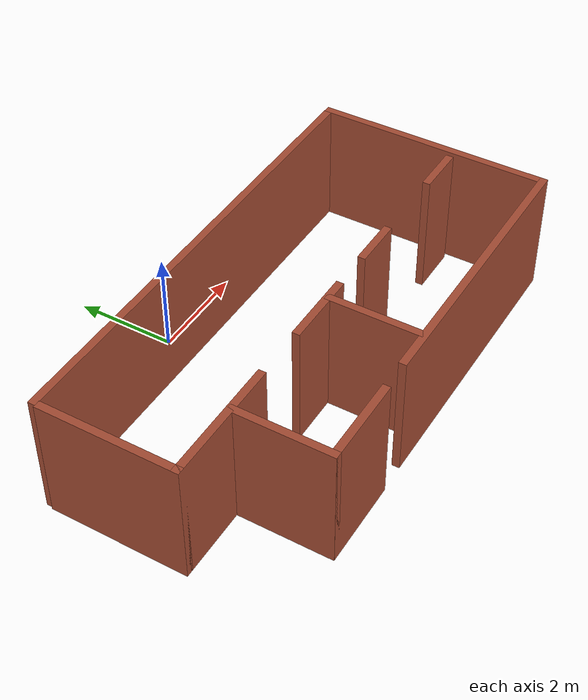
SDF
<?xml version='1.0'?>
<sdf version='1.6'>
  <model name='lab_2_home'>
    <pose frame=''>0.420544 -2.62553 0 0 -0 0</pose>
    <link name='Wall_2'>
      <collision name='Wall_2_Collision'>
        <geometry>
          <box>
            <size>2.75 0.15 2.5</size>
          </box>
        </geometry>
        <pose frame=''>0 0 1.25 0 -0 0</pose>
      </collision>
      <visual name='Wall_2_Visual'>
        <pose frame=''>0 0 1.25 0 -0 0</pose>
        <geometry>
          <box>
            <size>2.75 0.15 2.5</size>
          </box>
        </geometry>
        <material>
          <script>
            <uri>file://media/materials/scripts/gazebo.material</uri>
            <name>Gazebo/Bricks</name>
          </script>
          <ambient>1 1 1 1</ambient>
        </material>
        <meta>
          <layer>0</layer>
        </meta>
      </visual>
      <pose frame=''>-4.69204 0.627029 0 0 -0 -1.5708</pose>
    </link>
    <link name='Wall_22'>
      <collision name='Wall_22_Collision'>
        <geometry>
          <box>
            <size>5.75 0.15 2.5</size>
          </box>
        </geometry>
        <pose frame=''>0 0 1.25 0 -0 0</pose>
      </collision>
      <visual name='Wall_22_Visual'>
        <pose frame=''>0 0 1.25 0 -0 0</pose>
        <geometry>
          <box>
            <size>5.75 0.15 2.5</size>
          </box>
        </geometry>
        <material>
          <script>
            <uri>file://media/materials/scripts/gazebo.material</uri>
            <name>Gazebo/Bricks</name>
          </script>
          <ambient>1 1 1 1</ambient>
        </material>
        <meta>
          <layer>0</layer>
        </meta>
      </visual>
      <pose frame=''>1.89204 -2.53613 0 0 -0 0</pose>
    </link>
    <link name='Wall_28'>
      <collision name='Wall_28_Collision'>
        <geometry>
          <box>
            <size>1.5 0.15 2.5</size>
          </box>
        </geometry>
        <pose frame=''>0 0 1.25 0 -0 0</pose>
      </collision>
      <visual name='Wall_28_Visual'>
        <pose frame=''>0 0 1.25 0 -0 0</pose>
        <geometry>
          <box>
            <size>1.5 0.15 2.5</size>
          </box>
        </geometry>
        <material>
          <script>
            <uri>file://media/materials/scripts/gazebo.material</uri>
            <name>Gazebo/Bricks</name>
          </script>
          <ambient>1 1 1 1</ambient>
        </material>
        <meta>
          <layer>0</layer>
        </meta>
      </visual>
      <pose frame=''>-0.501593 -0.688978 0 0 -0 0</pose>
    </link>
    <link name='Wall_3'>
      <collision name='Wall_3_Collision'>
        <geometry>
          <box>
            <size>2.5 0.15 2.5</size>
          </box>
        </geometry>
        <pose frame=''>0 0 1.25 0 -0 0</pose>
      </collision>
      <visual name='Wall_3_Visual'>
        <pose frame=''>0 0 1.25 0 -0 0</pose>
        <geometry>
          <box>
            <size>2.5 0.15 2.5</size>
          </box>
        </geometry>
        <material>
          <script>
            <uri>file://media/materials/scripts/gazebo.material</uri>
            <name>Gazebo/Bricks</name>
          </script>
          <ambient>1 1 1 1</ambient>
        </material>
        <meta>
          <layer>0</layer>
        </meta>
      </visual>
      <pose frame=''>-3.51704 -0.672971 0 0 -0 0</pose>
    </link>
    <link name='Wall_30'>
      <collision name='Wall_30_Collision'>
        <geometry>
          <box>
            <size>1.9 0.15 2.5</size>
          </box>
        </geometry>
        <pose frame=''>0 0 1.25 0 -0 0</pose>
      </collision>
      <visual name='Wall_30_Visual'>
        <pose frame=''>0 0 1.25 0 -0 0</pose>
        <geometry>
          <box>
            <size>1.9 0.15 2.5</size>
          </box>
        </geometry>
        <material>
          <script>
            <uri>file://media/materials/scripts/gazebo.material</uri>
            <name>Gazebo/Bricks</name>
          </script>
          <ambient>1 1 1 1</ambient>
        </material>
        <meta>
          <layer>0</layer>
        </meta>
      </visual>
      <pose frame=''>-0.178544 -1.60047 0 0 -0 -1.5708</pose>
    </link>
    <link name='Wall_34'>
      <collision name='Wall_34_Collision'>
        <geometry>
          <box>
            <size>1 0.15 2.5</size>
          </box>
        </geometry>
        <pose frame=''>0 0 1.25 0 -0 0</pose>
      </collision>
      <visual name='Wall_34_Visual'>
        <pose frame=''>0 0 1.25 0 -0 0</pose>
        <geometry>
          <box>
            <size>1 0.15 2.5</size>
          </box>
        </geometry>
        <material>
          <script>
            <uri>file://media/materials/scripts/gazebo.material</uri>
            <name>Gazebo/Bricks</name>
          </script>
          <ambient>1 1 1 1</ambient>
        </material>
        <meta>
          <layer>0</layer>
        </meta>
      </visual>
      <pose frame=''>1.50151 -0.686883 0 0 -0 0</pose>
    </link>
    <link name='Wall_44'>
      <collision name='Wall_44_Collision'>
        <geometry>
          <box>
            <size>1 0.15 2.5</size>
          </box>
        </geometry>
        <pose frame=''>0 0 1.25 0 -0 0</pose>
      </collision>
      <visual name='Wall_44_Visual'>
        <pose frame=''>0 0 1.25 0 -0 0</pose>
        <geometry>
          <box>
            <size>1 0.15 2.5</size>
          </box>
        </geometry>
        <material>
          <script>
            <uri>file://media/materials/scripts/gazebo.material</uri>
            <name>Gazebo/Bricks</name>
          </script>
          <ambient>1 1 1 1</ambient>
        </material>
        <meta>
          <layer>0</layer>
        </meta>
      </visual>
      <pose frame=''>4.01269 -0.691347 0 0 -0 0</pose>
    </link>
    <link name='Wall_46'>
      <collision name='Wall_46_Collision'>
        <geometry>
          <box>
            <size>4.75 0.15 2.5</size>
          </box>
        </geometry>
        <pose frame=''>0 0 1.25 0 -0 0</pose>
      </collision>
      <visual name='Wall_46_Visual'>
        <pose frame=''>0 0 1.25 0 -0 0</pose>
        <geometry>
          <box>
            <size>4.75 0.15 2.5</size>
          </box>
        </geometry>
        <material>
          <script>
            <uri>file://media/materials/scripts/gazebo.material</uri>
            <name>Gazebo/Bricks</name>
          </script>
          <ambient>1 1 1 1</ambient>
        </material>
        <meta>
          <layer>0</layer>
        </meta>
      </visual>
      <pose frame=''>4.69204 -0.236128 0 0 -0 1.5708</pose>
    </link>
    <link name='Wall_48'>
      <collision name='Wall_48_Collision'>
        <geometry>
          <box>
            <size>9.5 0.15 2.5</size>
          </box>
        </geometry>
        <pose frame=''>0 0 1.25 0 -0 0</pose>
      </collision>
      <visual name='Wall_48_Visual'>
        <pose frame=''>0 0 1.25 0 -0 0</pose>
        <geometry>
          <box>
            <size>9.5 0.15 2.5</size>
          </box>
        </geometry>
        <material>
          <script>
            <uri>file://media/materials/scripts/gazebo.material</uri>
            <name>Gazebo/Bricks</name>
          </script>
          <ambient>1 1 1 1</ambient>
        </material>
        <meta>
          <layer>0</layer>
        </meta>
      </visual>
      <pose frame=''>0.017044 2.06387 0 0 -0 3.14159</pose>
    </link>
    <link name='Wall_7'>
      <collision name='Wall_7_Collision'>
        <geometry>
          <box>
            <size>2 0.15 2.5</size>
          </box>
        </geometry>
        <pose frame=''>0 0 1.25 0 -0 0</pose>
      </collision>
      <visual name='Wall_7_Visual'>
        <pose frame=''>0 0 1.25 0 -0 0</pose>
        <geometry>
          <box>
            <size>2 0.15 2.5</size>
          </box>
        </geometry>
        <material>
          <script>
            <uri>file://media/materials/scripts/gazebo.material</uri>
            <name>Gazebo/Bricks</name>
          </script>
          <ambient>1 1 1 1</ambient>
        </material>
        <meta>
          <layer>0</layer>
        </meta>
      </visual>
      <pose frame=''>-3.21684 -1.62553 0 0 -0 -1.5708</pose>
    </link>
    <link name='Wall_8'>
      <collision name='Wall_8_Collision'>
        <geometry>
          <box>
            <size>1.75 0.15 2.5</size>
          </box>
        </geometry>
        <pose frame=''>0 0 1.25 0 -0 0</pose>
      </collision>
      <visual name='Wall_8_Visual'>
        <pose frame=''>0 0 1.25 0 -0 0</pose>
        <geometry>
          <box>
            <size>1.75 0.15 2.5</size>
          </box>
        </geometry>
        <material>
          <script>
            <uri>file://media/materials/scripts/gazebo.material</uri>
            <name>Gazebo/Bricks</name>
          </script>
          <ambient>1 1 1 1</ambient>
        </material>
        <meta>
          <layer>0</layer>
        </meta>
      </visual>
      <pose frame=''>-2.41357 -2.55053 0 0 -0 0</pose>
    </link>
    <static>1</static>
  </model>
</sdf>
